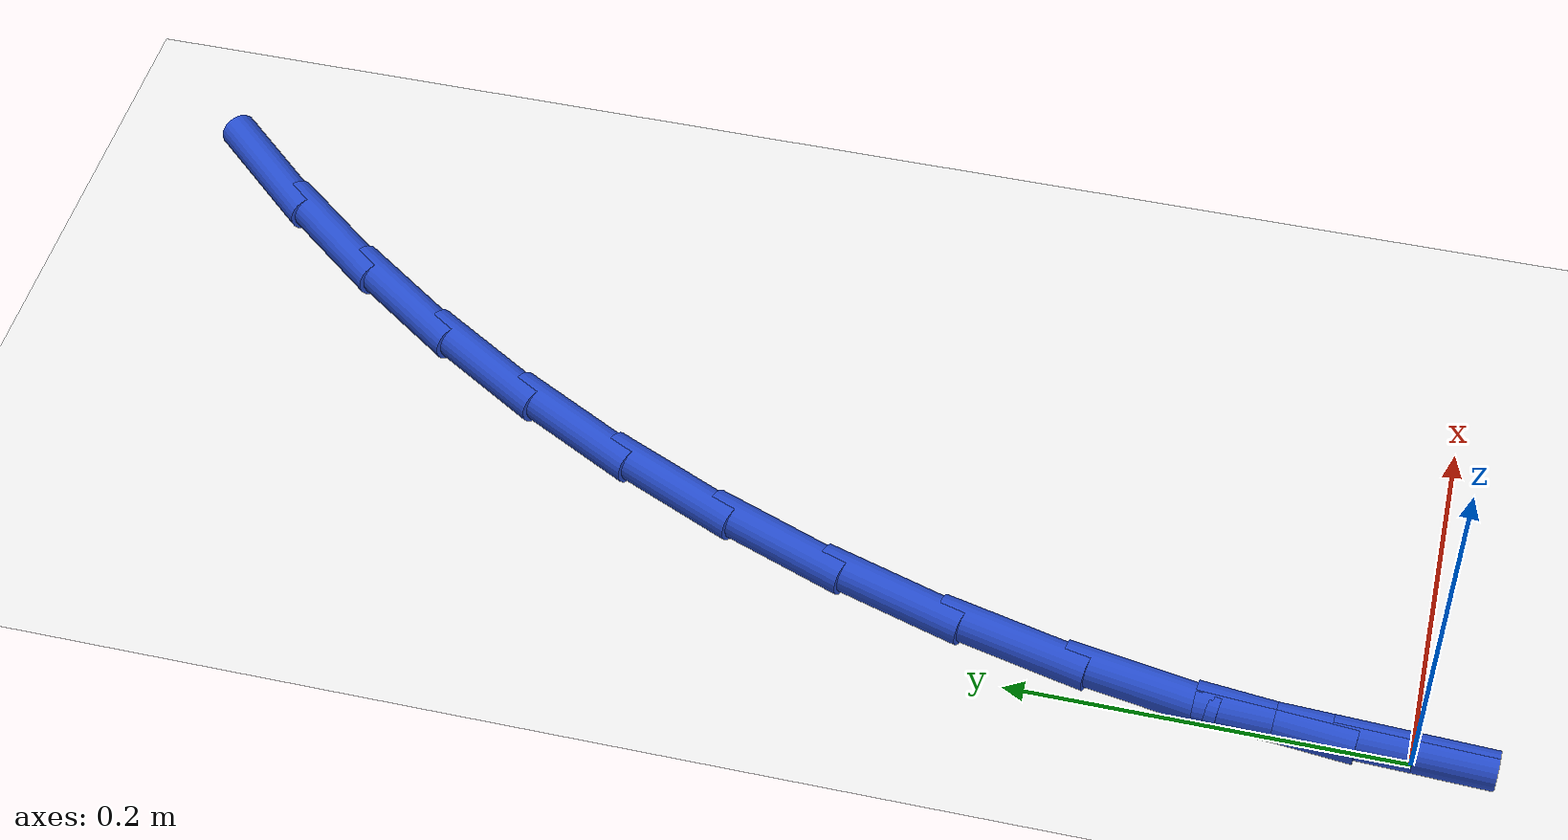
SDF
<sdf version="1.6">
 <world name="default">
  <model name="ground_plane">
   <static>1</static>
   <link name="link">
    <collision name="collision">
     <geometry><plane><normal>0 0 1</normal><size>100 100</size></plane></geometry>
     <surface><friction><ode><mu>100</mu><mu2>50</mu2></ode></friction></surface>
    </collision>
    <visual name="visual">
     <cast_shadows>0</cast_shadows>
     <geometry><plane><normal>0 0 1</normal><size>100 100</size></plane></geometry>
     <material>
      <script><uri>file://media/materials/scripts/gazebo.material</uri><name>Gazebo/WhiteGlow</name></script>
     </material>
    </visual>
   </link>
  </model>
  <model name="line">
   <link name="link_0">
    <pose>-8.673617379884035e-17 1.1102230246251565e-16 0.01 0 1.57 1.5312123706499392</pose>
    <collision name="collision">
     <geometry><cylinder><radius>0.01</radius><length>0.08</length></cylinder></geometry>
    </collision>
    <visual name="visual">
     <material>
      <script><name>Gazebo/Blue</name><uri>file://media/materials/scripts/gazebo.material</uri></script>
     </material>
     <geometry><cylinder><radius>0.01</radius><length>0.08</length></cylinder></geometry>
    </visual>
   </link>
   <link name="link_1">
    <pose>0.002649852440095065 0.06690761977082293 0.01 0 1.57 1.4646672529560205</pose>
    <collision name="collision">
     <geometry><cylinder><radius>0.01</radius><length>0.08</length></cylinder></geometry>
    </collision>
    <visual name="visual">
     <material>
      <script><name>Gazebo/Blue</name><uri>file://media/materials/scripts/gazebo.material</uri></script>
     </material>
     <geometry><cylinder><radius>0.01</radius><length>0.08</length></cylinder></geometry>
    </visual>
   </link>
   <link name="link_2">
    <pose>0.009711710491989467 0.13319788692349654 0.01 0 1.57 1.3992586267940121</pose>
    <collision name="collision">
     <geometry><cylinder><radius>0.01</radius><length>0.08</length></cylinder></geometry>
    </collision>
    <visual name="visual">
     <material>
      <script><name>Gazebo/Blue</name><uri>file://media/materials/scripts/gazebo.material</uri></script>
     </material>
     <geometry><cylinder><radius>0.01</radius><length>0.08</length></cylinder></geometry>
    </visual>
   </link>
   <link name="link_3">
    <pose>0.021047119539312042 0.19862961517040142 0.01 0 1.57 1.3347983410671345</pose>
    <collision name="collision">
     <geometry><cylinder><radius>0.01</radius><length>0.08</length></cylinder></geometry>
    </collision>
    <visual name="visual">
     <material>
      <script><name>Gazebo/Blue</name><uri>file://media/materials/scripts/gazebo.material</uri></script>
     </material>
     <geometry><cylinder><radius>0.01</radius><length>0.08</length></cylinder></geometry>
    </visual>
   </link>
   <link name="link_4">
    <pose>0.0365176249656918 0.26296161822391795 0.01 0 1.57 1.2710612165997792</pose>
    <collision name="collision">
     <geometry><cylinder><radius>0.01</radius><length>0.08</length></cylinder></geometry>
    </collision>
    <visual name="visual">
     <material>
      <script><name>Gazebo/Blue</name><uri>file://media/materials/scripts/gazebo.material</uri></script>
     </material>
     <geometry><cylinder><radius>0.01</radius><length>0.08</length></cylinder></geometry>
    </visual>
   </link>
   <link name="link_5">
    <pose>0.055984772154757736 0.32595270979642665 0.01 0 1.57 1.2077928053069897</pose>
    <collision name="collision">
     <geometry><cylinder><radius>0.01</radius><length>0.08</length></cylinder></geometry>
    </collision>
    <visual name="visual">
     <material>
      <script><name>Gazebo/Blue</name><uri>file://media/materials/scripts/gazebo.material</uri></script>
     </material>
     <geometry><cylinder><radius>0.01</radius><length>0.08</length></cylinder></geometry>
    </visual>
   </link>
   <link name="link_6">
    <pose>0.07931010649013875 0.3873617036003075 0.01 0 1.57 1.1447162354837976</pose>
    <collision name="collision">
     <geometry><cylinder><radius>0.01</radius><length>0.08</length></cylinder></geometry>
    </collision>
    <visual name="visual">
     <material>
      <script><name>Gazebo/Blue</name><uri>file://media/materials/scripts/gazebo.material</uri></script>
     </material>
     <geometry><cylinder><radius>0.01</radius><length>0.08</length></cylinder></geometry>
    </visual>
   </link>
   <link name="link_7">
    <pose>0.10635517335546385 0.44694741334794125 0.01 0 1.57 1.0815383351641947</pose>
    <collision name="collision">
     <geometry><cylinder><radius>0.01</radius><length>0.08</length></cylinder></geometry>
    </collision>
    <visual name="visual">
     <material>
      <script><name>Gazebo/Blue</name><uri>file://media/materials/scripts/gazebo.material</uri></script>
     </material>
     <geometry><cylinder><radius>0.01</radius><length>0.08</length></cylinder></geometry>
    </visual>
   </link>
   <link name="link_8">
    <pose>0.13698151813436202 0.5044686527517082 0.01 0 1.57 1.0179738486658718</pose>
    <collision name="collision">
     <geometry><cylinder><radius>0.01</radius><length>0.08</length></cylinder></geometry>
    </collision>
    <visual name="visual">
     <material>
      <script><name>Gazebo/Blue</name><uri>file://media/materials/scripts/gazebo.material</uri></script>
     </material>
     <geometry><cylinder><radius>0.01</radius><length>0.08</length></cylinder></geometry>
    </visual>
   </link>
   <link name="link_9">
    <pose>0.17105055166994562 0.5596862989013065 0.01 0 1.57 0.9547963222719383</pose>
    <collision name="collision">
     <geometry><cylinder><radius>0.01</radius><length>0.08</length></cylinder></geometry>
    </collision>
    <visual name="visual">
     <material>
      <script><name>Gazebo/Blue</name><uri>file://media/materials/scripts/gazebo.material</uri></script>
     </material>
     <geometry><cylinder><radius>0.01</radius><length>0.08</length></cylinder></geometry>
    </visual>
   </link>
   <link name="link_10">
    <pose>0.20841649819936228 0.6124714460916666 0.01 0 1.57 0.8936799203483811</pose>
    <collision name="collision">
     <geometry><cylinder><radius>0.01</radius><length>0.08</length></cylinder></geometry>
    </collision>
    <visual name="visual">
     <material>
      <script><name>Gazebo/Blue</name><uri>file://media/materials/scripts/gazebo.material</uri></script>
     </material>
     <geometry><cylinder><radius>0.01</radius><length>0.08</length></cylinder></geometry>
    </visual>
   </link>
   <link name="link_11">
    <pose>0.24892292424492232 0.6628586403986227 0.01 0 1.57 0.8350413473300963</pose>
    <collision name="collision">
     <geometry><cylinder><radius>0.01</radius><length>0.08</length></cylinder></geometry>
    </collision>
    <visual name="visual">
     <material>
      <script><name>Gazebo/Blue</name><uri>file://media/materials/scripts/gazebo.material</uri></script>
     </material>
     <geometry><cylinder><radius>0.01</radius><length>0.08</length></cylinder></geometry>
    </visual>
   </link>
   <link name="link_110">
    <pose>-7.979727989493313e-17 -4.163336342344337e-17 0.01 0 1.57 1.5306562511863824</pose>
    <collision name="collision">
     <geometry><cylinder><radius>0.01</radius><length>0.08</length></cylinder></geometry>
    </collision>
    <visual name="visual">
     <material>
      <script><name>Gazebo/Blue</name><uri>file://media/materials/scripts/gazebo.material</uri></script>
     </material>
     <geometry><cylinder><radius>0.01</radius><length>0.08</length></cylinder></geometry>
    </visual>
   </link>
   <link name="link_111">
    <pose>0.002685373747231882 0.06686413276249237 0.01 0 1.57 1.5306562511863822</pose>
    <collision name="collision">
     <geometry><cylinder><radius>0.01</radius><length>0.08</length></cylinder></geometry>
    </collision>
    <visual name="visual">
     <material>
      <script><name>Gazebo/Blue</name><uri>file://media/materials/scripts/gazebo.material</uri></script>
     </material>
     <geometry><cylinder><radius>0.01</radius><length>0.08</length></cylinder></geometry>
    </visual>
   </link>
  </model>
 </world>
</sdf>
